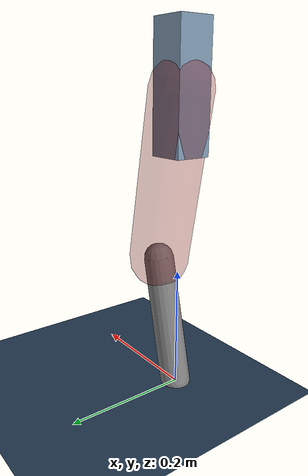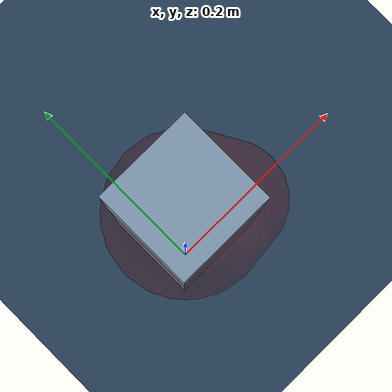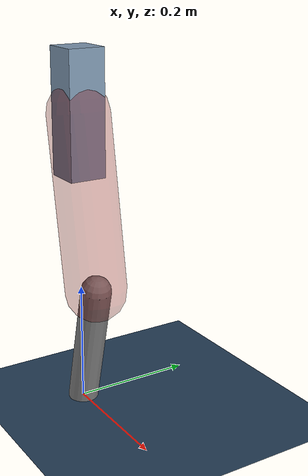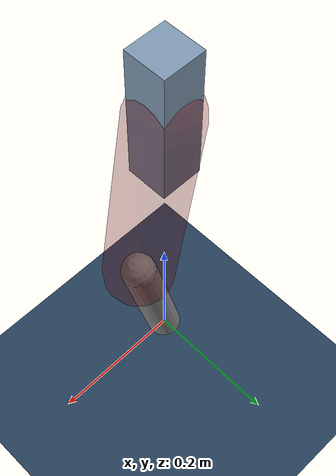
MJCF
<mujoco model="Hopper2D">
	<compiler inertiafromgeom="true" angle="radian" />
	<option timestep="0.001" integrator="implicit" cone="elliptic" solver="Newton" tolerance="1e-10" />

	<default>
		<geom contype="1" conaffinity="1" condim="3" friction="2 0.005 0.0001" solref="0.005 1" />
		<joint limited="true" damping="0.1" />
	</default>

	<asset>
		<texture name="skybox" type="skybox" builtin="gradient" rgb1=".4 .6 .8" rgb2="0 0 0" width="800" height="800" />
		<texture name="grid" type="2d" builtin="checker" rgb1=".1 .2 .3" rgb2=".2 .3 .4" width="300" height="300" mark="edge" markrgb=".2 .3 .4" />
		<material name="ground" texture="grid" texrepeat="1 1" texuniform="true" reflectance="0.1" />
		<material name="leg" rgba="0.5 0.6 0.7 1" />
	</asset>

	<worldbody>

		<geom name="floor" type="plane" size="5 5 0.25" material="ground" />

		<light directional="false" diffuse="0.8 0.8 0.8" specular="0.3 0.3 0.3" pos="0 0 2" dir="0 0 -1" />
		<light mode="targetbodycom" target="base" directional="false" diffuse="0.8 0.8 0.8" specular="0.3 0.3 0.3" pos="0 0 2" dir="0 0 -1" />

		<camera name="fixed" pos="0 -2 1" xyaxes="1 0 0 0 0 1" />
		<camera name="tracking" mode="trackcom" pos="0 -3 1" />

		<body name="root" pos="0 0 0.48741248044606966">
			<joint name="slide_x" type="slide" axis="1 0 0" range="-100 100" />
			<joint name="slide_z" type="slide" axis="0 0 1" range="0 10" />

			<body name="base" pos="0 0 0">
				<geom name="torso" type="box" size="0.03 0.03 0.1" mass="3.705" material="leg" />

				<body name="link1" pos="0 0 0" euler="0 1.3950053005144836 0">
					<joint type="hinge" axis="0 -1 0" pos="0 0 0" name="hinge1" limited="true" range="-3.14 3.14" stiffness="0" damping="0.1" />
					<geom name="thigh" type="capsule" fromto="0 0 0 0.28118969453653997 0 0" size="0.05" rgba="0.5 0 0 0.3" mass="0.9382932057950039" />

					<body name="link2" pos="0.28118969453653997 0 0" euler="0 0.4052329188569263 0">
						<joint type="hinge" axis="0 -1 0" pos="0 0 0" name="hinge2" limited="true" range="-3.14 3.14" stiffness="0" damping="0.1" />
						<geom name="shank" type="capsule" fromto="0 0 0 0.21622278590952973 0 0" size="0.025" mass="0.41450050731857674" />

					</body>
				</body>
			</body>
		</body>
	</worldbody>

	<actuator>
		<motor name="torque1" joint="hinge1" ctrlrange="-200.03571703208792 200.03571703208792" ctrllimited="true" gear="1" />
		<motor name="torque2" joint="hinge2" ctrlrange="-109.34187537822339 109.34187537822339" ctrllimited="true" gear="1" />
	</actuator>
</mujoco>
